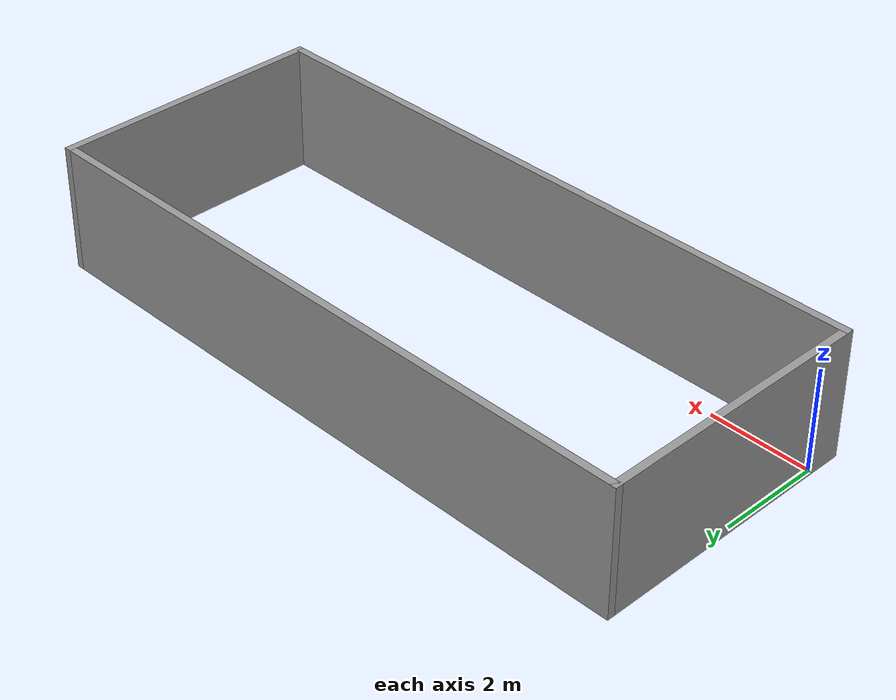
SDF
<?xml version='1.0'?>
<sdf version='1.6'>
  <model name='demoWall22082019_v2'>
    <pose frame=''>6.4075 2.135 0 0 -0 0</pose>
    <link name='Wall_0'>
      <collision name='Wall_0_Collision'>
        <geometry>
          <box>
            <size>12.995 0.15 2.5</size>
          </box>
        </geometry>
        <pose frame=''>0 0 1.25 0 -0 0</pose>
      </collision>
      <visual name='Wall_0_Visual'>
        <pose frame=''>0 0 1.25 0 -0 0</pose>
        <geometry>
          <box>
            <size>12.995 0.15 2.5</size>
          </box>
        </geometry>
        <material>
          <script>
            <uri>file://media/materials/scripts/gazebo.material</uri>
            <name>Gazebo/Grey</name>
          </script>
          <ambient>1 1 1 1</ambient>
        </material>
        <meta>
          <layer>0</layer>
        </meta>
      </visual>
      <pose frame=''>-0 -2.665 0 0 -0 0</pose>
    </link>
    <link name='Wall_3'>
      <collision name='Wall_3_Collision'>
        <geometry>
          <box>
            <size>5.48 0.15 2.5</size>
          </box>
        </geometry>
        <pose frame=''>0 0 1.25 0 -0 0</pose>
      </collision>
      <visual name='Wall_3_Visual'>
        <pose frame=''>0 0 1.25 0 -0 0</pose>
        <geometry>
          <box>
            <size>5.48 0.15 2.5</size>
          </box>
        </geometry>
        <material>
          <script>
            <uri>file://media/materials/scripts/gazebo.material</uri>
            <name>Gazebo/Grey</name>
          </script>
          <ambient>1 1 1 1</ambient>
        </material>
        <meta>
          <layer>0</layer>
        </meta>
      </visual>
      <pose frame=''>6.4225 0 0 0 -0 1.5708</pose>
    </link>
    <link name='Wall_5'>
      <collision name='Wall_5_Collision'>
        <geometry>
          <box>
            <size>12.995 0.15 2.5</size>
          </box>
        </geometry>
        <pose frame=''>0 0 1.25 0 -0 0</pose>
      </collision>
      <visual name='Wall_5_Visual'>
        <pose frame=''>0 0 1.25 0 -0 0</pose>
        <geometry>
          <box>
            <size>12.995 0.15 2.5</size>
          </box>
        </geometry>
        <material>
          <script>
            <uri>file://media/materials/scripts/gazebo.material</uri>
            <name>Gazebo/Grey</name>
          </script>
          <ambient>1 1 1 1</ambient>
        </material>
        <meta>
          <layer>0</layer>
        </meta>
      </visual>
      <pose frame=''>-0 2.665 0 0 -0 3.14159</pose>
    </link>
    <link name='Wall_6'>
      <collision name='Wall_6_Collision'>
        <geometry>
          <box>
            <size>5.48 0.15 2.5</size>
          </box>
        </geometry>
        <pose frame=''>0 0 1.25 0 -0 0</pose>
      </collision>
      <visual name='Wall_6_Visual'>
        <pose frame=''>0 0 1.25 0 -0 0</pose>
        <geometry>
          <box>
            <size>5.48 0.15 2.5</size>
          </box>
        </geometry>
        <material>
          <script>
            <uri>file://media/materials/scripts/gazebo.material</uri>
            <name>Gazebo/Grey</name>
          </script>
          <ambient>1 1 1 1</ambient>
        </material>
        <meta>
          <layer>0</layer>
        </meta>
      </visual>
      <pose frame=''>-6.4225 0 0 0 -0 -1.5708</pose>
    </link>
    <static>1</static>
  </model>
</sdf>
